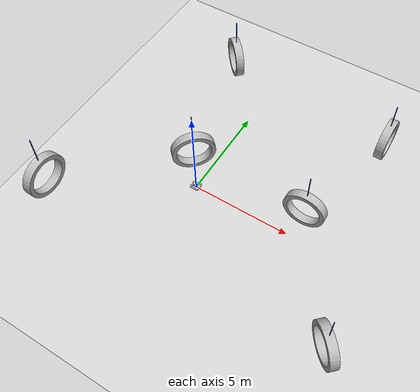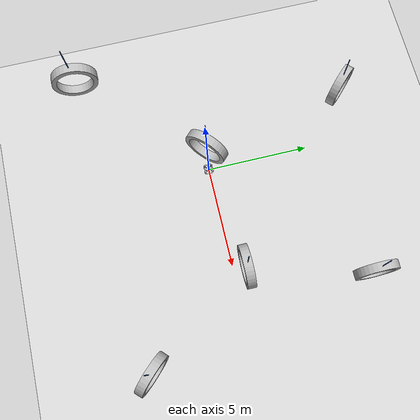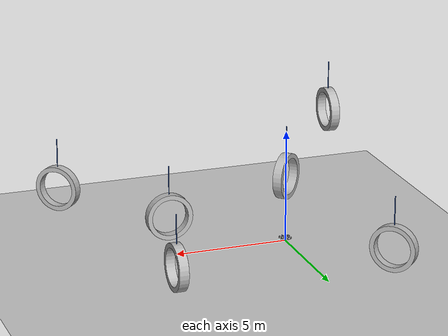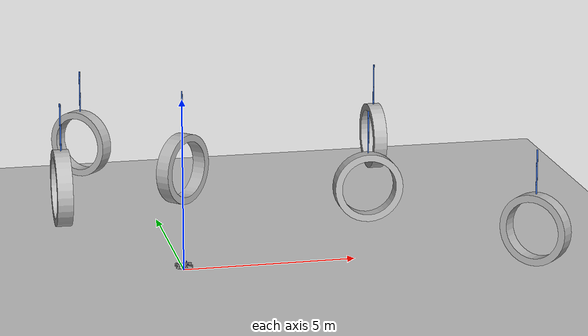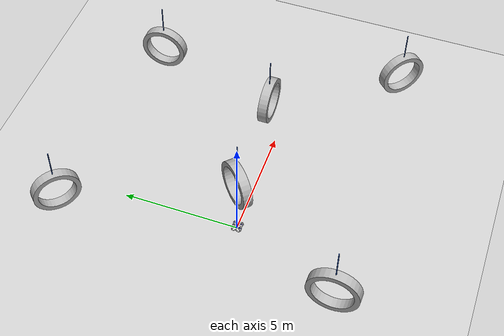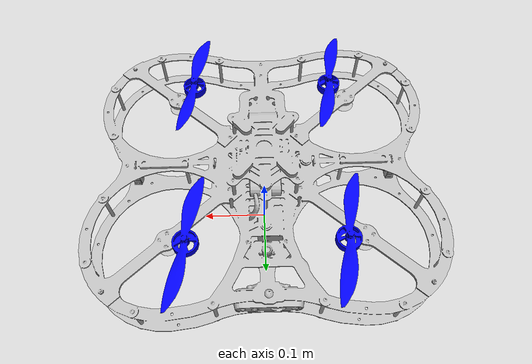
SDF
<sdf version="1.9">
  <world name="world_demo">
    <physics type="dart">
    <!--4ms step-->
      <max_step_size>0.001</max_step_size>
      <real_time_factor>0</real_time_factor>
      <real_time_update_rate>5000000</real_time_update_rate>
      <max_contacts>10</max_contacts>
      <dart>
        <solver><solver_type>dantzig</solver_type></solver>
        <collision_detector>bullet</collision_detector>
      </dart>
    </physics>

    <plugin name="gz::sim::systems::Physics" filename="gz-sim-physics-system">
        <engine>
          <filename>gz-physics-dartsim-plugin</filename>
        </engine>
    </plugin>

    <model name="ground_plane">
    <pose>0 0 0 0 0 0</pose>
      <static>true</static>
      <link name="link">
        <collision name="collision">
          <geometry>
            <plane>
              <normal>0 0 1</normal>
              <size>100 100</size>
            </plane>
          </geometry>
        </collision>
        <visual name="visual">
          <geometry>
            <plane>
              <normal>0 0 1</normal>
              <size>100 100</size>
            </plane>
          </geometry>
          <material>
            <ambient>0.8 0.8 0.8 1</ambient>
            <diffuse>0.8 0.8 0.8 1</diffuse>
            <specular>0.8 0.8 0.8 1</specular>
          </material>
        </visual>
      </link>
    </model>

    <gravity>0 0 -9.82</gravity>
    <magnetic_field>6e-06 2.3e-05 -4.2e-05</magnetic_field>
    <atmosphere type="adiabatic" />
    <scene>
      <ambient>0.4 0.4 0.4 1</ambient>
      <background>0.7 0.7 0.8 1</background>
      <shadows>true</shadows>
      <sky>
      <sunrise>10</sunrise>
      </sky>
      <grid>false</grid>
      <origin_visual>false</origin_visual>
    </scene>

    <light name="sun" type="directional">
      <pose>0 0 10 0 -0 0</pose>
      <cast_shadows>false</cast_shadows>
      <intensity>1</intensity>
      <direction>-0.5 0.1 -0.9</direction>
    <visualize>false</visualize>
    </light>

     <light name="lights1" type="directional">
      <pose>0 0 3 0 -0 0</pose>
      <cast_shadows>false</cast_shadows>
      <intensity>1</intensity>
      <direction>0 0 -1</direction>
    <visualize>false</visualize>
    </light>
    <light name="lights2" type="directional">
      <pose>1 0 3 0 -0 0</pose>
      <cast_shadows>false</cast_shadows>
      <intensity>1</intensity>
      <direction>0 0 -1</direction>
    <visualize>false</visualize>
    </light>

    <light name="lights3" type="directional">
      <pose>-1 0 3 0 -0 0</pose>
      <cast_shadows>false</cast_shadows>
      <intensity>1</intensity>
      <direction>0 0 -1</direction>
    <visualize>false</visualize>
    </light>

    <light name="lights4" type="directional">
      <pose>0 1 3 0 -0 0</pose>
      <cast_shadows>false</cast_shadows>
      <intensity>1</intensity>
      <direction>0 0 -1</direction>
    <visualize>false</visualize>
    </light>

    <light name="lights5" type="directional">
      <pose>0 1 3 0 -0 0</pose>
      <cast_shadows>false</cast_shadows>
      <intensity>1</intensity>
      <direction>0 0 -1</direction>
    <visualize>false</visualize>
    </light>

  <!--jinja template for gates and waypts-->

    <include>
        <uri>model://hinge_hoop_gate.sdf</uri>
        <name>gate0</name>
        <pose>0.0 0.0 2.5 0 0 -0.78</pose>
    </include>

    <include>
        <uri>model://box.sdf</uri>
        <name>box1</name>
        <pose>7.0 6.0 1.5 0 0 0</pose>
    </include>
    <include>
        <uri>model://hinge_hoop_gate.sdf</uri>
        <name>gate1</name>
        <pose>7.0 6.0 1.5 0 0 0</pose>
    </include>

    <include>
        <uri>model://box.sdf</uri>
        <name>box2</name>
        <pose>9.0 -4.5 1.5 0 0 3.9269908169872414</pose>
    </include>
    <include>
        <uri>model://hinge_hoop_gate.sdf</uri>
        <name>gate2</name>
        <pose>9.0 -4.5 1.5 0 0 3.9269908169872414</pose>
    </include>

    <include>
        <uri>model://box.sdf</uri>
        <name>box3</name>
        <pose>-4.0 -5.0 3.6 0 0 3.12</pose>
    </include>
    <include>
        <uri>model://hinge_hoop_gate.sdf</uri>
        <name>gate3</name>
        <pose>-4.0 -5.0 3.6 0 0 3.12</pose>
    </include>

    <include>
        <uri>model://box.sdf</uri>
        <name>box4</name>
        <pose>5.5 -0.5 1.5 0 0 7.8500000000000005</pose>
    </include>
    <include>
        <uri>model://hinge_hoop_gate.sdf</uri>
        <name>gate4</name>
        <pose>5.5 0.5 1.5 0 0 7.8500000000000005</pose>
    </include>

    <include>
        <uri>model://box.sdf</uri>
        <name>box5</name>
        <pose>-2.0 7.0 1.5 0 0 10.206990816987242</pose>
    </include>
    <include>
        <uri>model://hinge_hoop_gate.sdf</uri>
        <name>gate5</name>
        <pose>-2.0 7.0 1.5 0 0 10.206990816987242</pose>
    </include>

 <include>
        <uri>model://quadrotor_with_contact.sdf</uri>
        <name>quadrotor</name>
        <pose>0 0. 0.15 0 0 0</pose>
    </include>
  </world>
</sdf>

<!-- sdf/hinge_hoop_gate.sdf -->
<sdf version="1.7">
  <model name="swinging_hoop">
    <link name="arm_link">
      <pose>0 0 2.0 0 0 0</pose> <!-- rpy: (+pi/2,0,0). Center at y=-L/2 so top end is at the hinge -->
      <inertial>
        <mass>1.0</mass>
        <!-- Cylinder inertia with axis along link Y -->
        <inertia>
          <ixx>0.1876</ixx>
          <iyy>0.0002</iyy>
          <izz>0.1876</izz>
        </inertia>
      </inertial>
      <collision name="arm_collision">
        <surface>
            <contact>
            <collide_bitmask>0x00</collide_bitmask>
              <collide_without_contact>
                true
              </collide_without_contact>
              <bullet>
              <soft_cfm>1e-5</soft_cfm>     <!-- numerical compliance -->
                <soft_erp>0.2</soft_erp>      <!-- error reduction -->
                <kp>2e6</kp>                  <!-- WAY lower than 1e12 -->
                <kd>50</kd>                   <!-- damping with kp -->
                <split_impulse>true</split_impulse>
                <split_impulse_penetration_threshold>-0.01</split_impulse_penetration_threshold>
                </bullet>
            </contact>

      </surface>
        <geometry>
          <cylinder>
            <radius>0.02</radius>
            <length>1.5</length>
          </cylinder>
        </geometry>
      </collision>
      <visual name="arm_visual">
        <geometry>
          <cylinder>
            <radius>0.02</radius>
            <length>1.5</length>
          </cylinder>
        </geometry>
        <material>
          <ambient>0.15 0.25 0.5 1</ambient>
          <diffuse>0.2 0.4 0.8 1</diffuse>
        </material>
      </visual>
    </link>

    <joint name="hinge_to_arm" type="revolute">
      <parent>world</parent>
      <child>arm_link</child>
      <pose relative_to="arm_link">0 0 0.75 0 0 0</pose> <!-- joint at hinge center -->
      <axis>
        <xyz expressed_in="arm_link">1 0 0</xyz>
        <limit>
          <lower>-inf</lower>
          <upper>inf</upper>
        </limit>
      </axis>
    </joint>
     <plugin
        filename="joint_position_controller_plugin"
        name="gz::sim::systems::JointPositionController">
        <joint_name>hinge_to_arm</joint_name>
        <joint_index>0</joint_index>
        <p_gain>68.6</p_gain>
        <i_gain>30.49</i_gain>
        <d_gain>16.0</d_gain>
        <i_max>25</i_max>
        <i_min>-25</i_min>
        <cmd_max>60</cmd_max>
        <cmd_min>-60</cmd_min>
      </plugin>

       <link name="hoop_link">
      <!-- The fixed joint below positions this link; initial pose doesn't matter, but zero keeps things tidy -->
      <pose>0 0 0.50 0 0 0</pose>
      <inertial>
        <mass>2.0</mass>
        <density>7823</density>
        <!-- Approx torus inertia (axis along local Y). Good enough unless you're doing precision dynamics. -->
        <inertia>
          <ixx>1.0125</ixx>
          <iyy>2.015</iyy>
          <izz>1.0125</izz>
        </inertia>
      </inertial>

      <collision name="hoop_collision">
      <surface>
  <contact>
  <collide_bitmask>0x00</collide_bitmask>
    <collide_without_contact>
      true
    </collide_without_contact>
  </contact>
</surface>
        <geometry>
          <mesh>
            <!-- TODO: replace with your actual torus mesh path -->
            <uri>model://meshes/racing_hoop2.dae</uri>
            <scale>1 1 1</scale>
          </mesh>
        </geometry>
        <!-- Offset the mesh so the attachment point is the hoop's top (0,1,0) -->
      </collision>

      <visual name="hoop_visual">
        <geometry>
          <mesh>
            <uri>model://meshes/racing_hoop2.dae</uri>
            <scale>1 1 1</scale>
          </mesh>
        </geometry>
      </visual>
    </link>

    <!-- Fixed joint: attach the hoop at the arm's bottom end -->
    <joint name="arm_to_hoop" type="fixed">
      <parent>arm_link</parent>
      <child>hoop_link</child>
      <!-- Place joint at arm bottom: parent's origin is at y=-0.75; bottom end is another -0.75 -->
      <pose>0 0.85 0 0 0 0</pose>
    </joint>
    </model>
</sdf>

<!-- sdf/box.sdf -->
<sdf version='1.11'>
  <model name="box">
  <static>true</static>
      <pose>0 0 0.5 0 0.4 0</pose>
      <link name="box_link">
        <inertial>
          <inertia>
            <ixx>0.16666</ixx>
            <ixy>0</ixy>
            <ixz>0</ixz>
            <iyy>0.16666</iyy>
            <iyz>0</iyz>
            <izz>0.16666</izz>
          </inertia>
          <mass>1.0</mass>
        </inertial>
        <collision name="box_collision">
          <geometry>
            <box>
              <size>0.1 0.1 0.1</size>
            </box>
          </geometry>
          <surface>
        <contact>
          <collide_bitmask>0x00</collide_bitmask>
        </contact>
      </surface>
        </collision>

        <visual name="box_visual">
          <geometry>
            <box>
              <size>0.0001 0.0001 0.0001</size>
            </box>
          </geometry>
          <material>
            <ambient>0 1 0 1</ambient>
            <diffuse>0 1 0 1</diffuse>
            <specular>0 1 0 1</specular>
          </material>
        </visual>
      </link>
    </model>
</sdf>

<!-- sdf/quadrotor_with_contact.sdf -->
<sdf version='1.11'>
  <model name='quadrotor'>

    <enable_wind>1</enable_wind>
    <link name='quadrotor/base_link'>
      <inertial>
        <pose>0 0 0 0 0 0</pose>
        <mass>1.52</mass>
        <inertia>
          <ixx>14387108.65e-9</ixx>
          <iyy>16559882.52e-9</iyy>
          <izz>28784890.45e-9</izz>
        </inertia>
      </inertial>
      <collision name='quadrotor/base_link_inertia_collision_2'>
        <pose>0 0 0 0 0 0</pose>
        <geometry>
          <box>
            <size>0.2 0.2 0.05</size>
          </box>
        </geometry>
        <surface>
          <contact>
            <collide_without_contact>1</collide_without_contact>
          </contact>
        </surface>
      </collision>
      <visual name='quadrotor/base_link_inertia_visual_2'>
        <pose>0 0 0 3.1415920000000002 0 0</pose>
        <geometry>
          <mesh>
            <scale>1 1 1</scale>
            <uri>model://meshes/QDrone2_Combined.dae</uri>
          </mesh>
        </geometry>
      </visual>
      <sensor name='grayscale' type='camera'>
        <camera name='graycale'>
          <image>
            <width>640</width>
            <height>480</height>
            <format>L8</format>
          </image>
          <clip>
            <near>0.10000000000000001</near>
            <far>100</far>
          </clip>
          <noise>
            <type>gaussian</type>
            <mean>0</mean>
            <stddev>1e-3</stddev>
          </noise>

          <lens>
            <type>stereographic</type>
            <scale_to_hfov>1</scale_to_hfov>

              <intrinsics>

              <fx>381.47</fx>
              <fy>762.156</fy>
              <cx>297.96</cx>
              <cy>215.755</cy>

            </intrinsics>
            <projection>
              <p_fx>381.47</p_fx>
              <p_fy>762.156</p_fy>
              <p_cx>297.96</p_cx>
              <p_cy>215.755</p_cy>

            </projection>
          </lens>
        </camera>
        <always_on>false</always_on>
        <update_rate>30</update_rate>
        <visualize>false</visualize>
        <pose>0.125 0 -0.0375 3.14 1.57 3.14</pose>
      </sensor>
      <!--rgbd-->
       <sensor name='rgb' type='camera'>
        <camera name='rgb'>
          <image>
            <width>640</width>
            <height>480</height>
            <format>R8G8B8</format>
          </image>
          <clip>
            <near>0.10000000000000001</near>
            <far>100</far>
          </clip>
          <noise>
            <type>gaussian</type>
            <mean>0</mean>
            <stddev>1e-3</stddev>
          </noise>

          <lens>
            <type>stereographic</type>
            <scale_to_hfov>1</scale_to_hfov>

              <intrinsics>

              <fx>381.47</fx>
              <fy>762.156</fy> >
              <cx>297.96</cx>
              <cy>215.755</cy>

            </intrinsics>
            <projection>
              <p_fx>381.47</p_fx>
              <p_fy>762.156</p_fy>
              <p_cx>297.96</p_cx>
              <p_cy>215.755</p_cy>

            </projection>
          </lens>
        </camera>
        <always_on>false</always_on>
        <update_rate>30</update_rate>
        <visualize>false</visualize>
        <pose>0.125 0 0 0 0 0</pose>
      </sensor>
          <!-- distortion-->
          <!--lens-->

      <!--IMU1 , we will use different noise params-->
      <!-- range sensor using lidar-->
      <!-- we will only use a single vertical ray-->
    </link>

    <joint name='quadrotor/rotor_0_joint' type='revolute'>
      <pose relative_to='quadrotor/base_link'>-0.1016 -0.127 0.023 0 0 0</pose>
      <parent>quadrotor/base_link</parent>
      <child>quadrotor/rotor_0</child>
      <axis>
        <xyz>0 0 1</xyz>
        <limit>
          <lower>-inf</lower>
          <upper>inf</upper>
        </limit>
        <dynamics>
          <spring_reference>0</spring_reference>
          <spring_stiffness>0</spring_stiffness>
        </dynamics>
      </axis>
    </joint>
    <link name='quadrotor/rotor_0'>
      <pose relative_to='quadrotor/rotor_0_joint'>0 0 0 0 0 0</pose>
      <inertial>
        <pose>0 0 0 0 0 0</pose>
        <mass>0.0050000000000000001</mass>
        <inertia>
          <ixx>1.9500000000000001e-07</ixx>
          <ixy>0</ixy>
          <ixz>0</ixz>
          <iyy>3.3340833333333338e-05</iyy>
          <iyz>0</iyz>
          <izz>3.3520833333333339e-05</izz>
        </inertia>
      </inertial>
      <collision name='quadrotor/rotor_0_collision'>
        <pose>0 0 0 0 0 0</pose>
        <geometry>
          <cylinder>
            <length>0.0050000000000000001</length>
            <radius>0.10000000000000001</radius>
          </cylinder>
        </geometry>
        <surface>
          <contact>
          <collide_bitmask>0xff</collide_bitmask>
            <ode/>
          </contact>
          <friction>
            <ode/>
          </friction>
        </surface>
      </collision>
      <visual name='quadrotor/rotor_0_visual'>
        <pose>0 0 0 0 0 0</pose>
        <geometry>
          <mesh>
            <scale>1 1 1</scale>
            <uri>model://meshes/motor_prop_assembly.dae</uri>
          </mesh>
        </geometry>
        <material>
          <ambient>0 0 1 1</ambient>
          <diffuse>0 0 1 1</diffuse>
          <specular>0.1 0.1 0.1 1</specular>
          <emissive>0 0 0 0</emissive>
      </material>
      </visual>
    </link>
    <joint name='quadrotor/rotor_1_joint' type='revolute'>
      <pose relative_to='quadrotor/base_link'>0.1016 -0.127 0.023 0 0 0</pose>
      <parent>quadrotor/base_link</parent>
      <child>quadrotor/rotor_1</child>
      <axis>
        <xyz>0 0 1</xyz>
        <limit>
          <lower>-inf</lower>
          <upper>inf</upper>
        </limit>
        <dynamics>
          <spring_reference>0</spring_reference>
          <spring_stiffness>0</spring_stiffness>
        </dynamics>
      </axis>
    </joint>
    <link name='quadrotor/rotor_1'>
      <pose relative_to='quadrotor/rotor_1_joint'>0 0 0 0 0 0</pose>
      <inertial>
        <pose>0 0 0 0 0 0</pose>
        <mass>0.0050000000000000001</mass>
        <inertia>
          <ixx>1.9500000000000001e-07</ixx>
          <ixy>0</ixy>
          <ixz>0</ixz>
          <iyy>3.3340833333333338e-05</iyy>
          <iyz>0</iyz>
          <izz>3.3520833333333339e-05</izz>
        </inertia>
      </inertial>
      <collision name='quadrotor/rotor_1_collision'>
        <pose>0 0 0 0 0 0</pose>
        <geometry>
          <cylinder>
            <length>0.0050000000000000001</length>
            <radius>0.10000000000000001</radius>
          </cylinder>
        </geometry>
        <surface>
          <contact>
          <collide_bitmask>0xff</collide_bitmask>
            <ode/>
          </contact>
          <friction>
            <ode/>
          </friction>
        </surface>
      </collision>
      <visual name='quadrotor/rotor_1_visual'>
        <pose>0 0 0 0 0 0</pose>
        <geometry>
          <mesh>
            <scale>1 1 1</scale>
            <uri>model://meshes/motor_prop_assembly.dae</uri>
          </mesh>
        </geometry>
        <material>
          <ambient>0 0 1 1</ambient>
          <diffuse>0 0 1 1</diffuse>
          <specular>0.1 0.1 0.1 1</specular>
          <emissive>0 0 0 0</emissive>
      </material>
      </visual>
    </link>
    <joint name='quadrotor/rotor_2_joint' type='revolute'>
      <pose relative_to='quadrotor/base_link'>-0.1016 0.127 0.023 0 0 0</pose>
      <parent>quadrotor/base_link</parent>
      <child>quadrotor/rotor_2</child>
      <axis>
        <xyz>0 0 1</xyz>
        <limit>
          <lower>-inf</lower>
          <upper>inf</upper>
        </limit>
        <dynamics>
          <spring_reference>0</spring_reference>
          <spring_stiffness>0</spring_stiffness>
        </dynamics>
      </axis>
    </joint>
    <link name='quadrotor/rotor_2'>
      <pose relative_to='quadrotor/rotor_2_joint'>0 0 0 0 0 0</pose>
      <inertial>
        <pose>0 0 0 0 0 0</pose>
        <mass>0.0050000000000000001</mass>
        <inertia>
          <ixx>1.9500000000000001e-07</ixx>
          <ixy>0</ixy>
          <ixz>0</ixz>
          <iyy>3.3340833333333338e-05</iyy>
          <iyz>0</iyz>
          <izz>3.3520833333333339e-05</izz>
        </inertia>
      </inertial>
      <collision name='quadrotor/rotor_2_collision'>
        <pose>0 0 0 0 0 0</pose>
        <geometry>
          <cylinder>
            <length>0.0050000000000000001</length>
            <radius>0.10000000000000001</radius>
          </cylinder>
        </geometry>
        <surface>
          <contact>
          <collide_bitmask>0xff</collide_bitmask>
            <ode/>
          </contact>
          <friction>
            <ode/>
          </friction>
        </surface>
      </collision>
      <visual name='quadrotor/rotor_2_visual'>
        <pose>0 0 0 0 0 0</pose>
        <geometry>
          <mesh>
            <scale>1 1 1</scale>
            <uri>model://meshes/motor_prop_assembly.dae</uri>
          </mesh>
        </geometry>
        <material>
          <ambient>0 0 1 1</ambient>
          <diffuse>0 0 1 1</diffuse>
          <specular>0.1 0.1 0.1 1</specular>
          <emissive>0 0 0 0</emissive>
      </material>
      </visual>
    </link>
    <joint name='quadrotor/rotor_3_joint' type='revolute'>
      <pose relative_to='quadrotor/base_link'>0.1016 0.127 0.023 0 0 0</pose>
      <parent>quadrotor/base_link</parent>
      <child>quadrotor/rotor_3</child>
      <axis>
        <xyz>0 0 1</xyz>
        <limit>
          <lower>-inf</lower>
          <upper>inf</upper>
        </limit>
        <dynamics>
          <spring_reference>0</spring_reference>
          <spring_stiffness>0</spring_stiffness>
        </dynamics>
      </axis>
    </joint>
    <link name='quadrotor/rotor_3'>
      <pose relative_to='quadrotor/rotor_3_joint'>0 0 0 0 0 0</pose>
      <inertial>
        <pose>0 0 0 0 0 0</pose>
        <mass>0.0050000000000000001</mass>
        <inertia>
          <ixx>1.9500000000000001e-07</ixx>
          <ixy>0</ixy>
          <ixz>0</ixz>
          <iyy>3.3340833333333338e-05</iyy>
          <iyz>0</iyz>
          <izz>3.3520833333333339e-05</izz>
        </inertia>
      </inertial>
      <collision name='quadrotor/rotor_3_collision'>
        <pose>0 0 0 0 0 0</pose>
        <geometry>
          <cylinder>
            <length>0.0050000000000000001</length>
            <radius>0.10000000000000001</radius>
          </cylinder>
        </geometry>
        <surface>
          <contact>
          <collide_bitmask>0xff</collide_bitmask>
            <ode/>
          </contact>
          <friction>
            <ode/>
          </friction>
        </surface>
      </collision>
      <visual name='quadrotor/rotor_3_visual'>
        <pose>0 0 0 0 0 0</pose>
        <geometry>
          <mesh>
            <scale>1 1 1</scale>
            <uri>model://meshes/motor_prop_assembly.dae</uri>
          </mesh>
        </geometry>
        <material>
          <ambient>0 0 1 1</ambient>
          <diffuse>0 0 1 1</diffuse>
          <specular>0.1 0.1 0.1 1</specular>
          <emissive>0 0 0 0</emissive>
      </material>
      </visual>
    </link>

    <plugin name='gz::sim::systems::MultiRotorPlugin' filename='rotor_plugin'>
      <parentLink>quadrotor/base_link</parentLink>
      <linkNames>quadrotor/rotor_0 quadrotor/rotor_1 quadrotor/rotor_2 quadrotor/rotor_3</linkNames>
      <turningDirections>1 -1 -1 1</turningDirections>
      <timeConstantUp>0.0125</timeConstantUp>
      <timeConstantDown>0.025</timeConstantDown>
      <maxRotVelocity>2246.0</maxRotVelocity>
      <thrustConstantQuadraticParams>1.9533e-6 0 0</thrustConstantQuadraticParams>

      <groundEffectConstant>1.17198e-09</groundEffectConstant>
      <momentConstantQuadraticParams>2.8400982e-08  0 0</momentConstantQuadraticParams>
      <downWashCoefficients>0.0 0.0 0.0</downWashCoefficients>
      <otherUavNames></otherUavNames>
      <rotorInertia>4.92e-6</rotorInertia>
      <rotorDragCoefficient>0.000020673</rotorDragCoefficient>
      <rollingMomentCoefficient>1e-9</rollingMomentCoefficient>
      <rotorVelocitySlowdownSim>2</rotorVelocitySlowdownSim>
    </plugin>

    <frame name='cam_joint' attached_to='quadrotor/base_link'>
      <pose>0 0 0 0 0 0</pose>
    </frame>
    <frame name='cam_link' attached_to='cam_joint'>
      <pose>0 0 0 0 0 0</pose>
    </frame>
    <frame name='imu_joint' attached_to='quadrotor/base_link'>
      <pose>0 0 0 0 0 0</pose>
    </frame>
    <frame name='imu_link' attached_to='imu_joint'>
      <pose>0 0 0 0 0 0</pose>
    </frame>
    <frame name='quadrotor/base_joint' attached_to='quadrotor/base_link'>
      <pose>0 0 0 0 0 0</pose>
    </frame>
    <frame name='quadrotor/base_link_inertia' attached_to='quadrotor/base_joint'>
      <pose>0 0 0 0 0 0</pose>
    </frame>
  </model>
</sdf>
